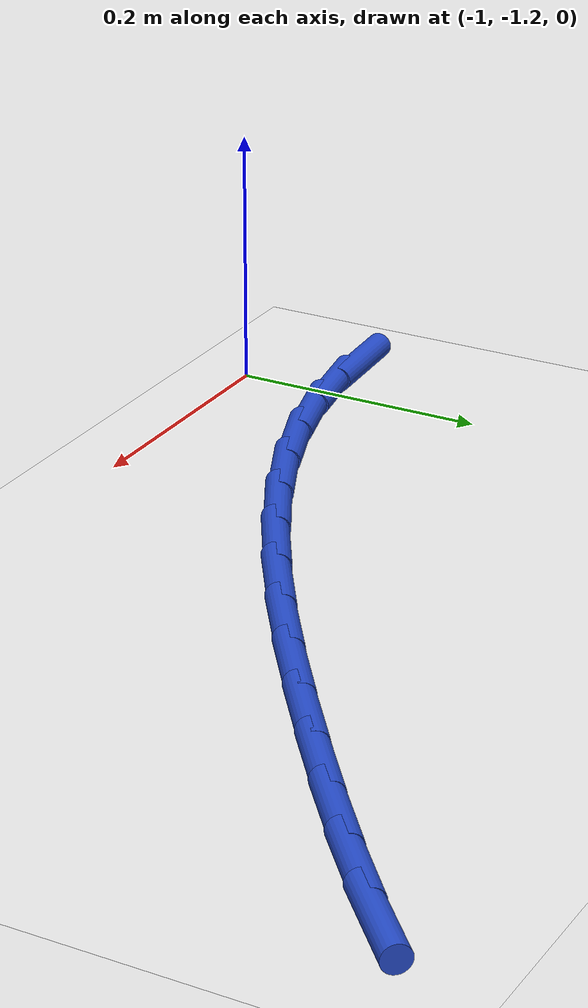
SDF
<sdf version="1.6">
 <world name="default">
  <model name="ground_plane">
   <static>1</static>
   <link name="link">
    <collision name="collision">
     <geometry><plane><normal>0 0 1</normal><size>100 100</size></plane></geometry>
     <surface><friction><ode><mu>100</mu><mu2>50</mu2></ode></friction></surface>
    </collision>
    <visual name="visual">
     <cast_shadows>0</cast_shadows>
     <geometry><plane><normal>0 0 1</normal><size>100 100</size></plane></geometry>
     <material>
      <script><uri>file://media/materials/scripts/gazebo.material</uri><name>Gazebo/WhiteGlow</name></script>
     </material>
    </visual>
   </link>
  </model>
  <model name="line">
   <link name="link_91">
    <pose>-1.0469936325225084 -1.1231341906443912 0.01 0 1.57 0.06224811746997233</pose>
    <collision name="collision">
     <geometry><cylinder><radius>0.01</radius><length>0.08</length></cylinder></geometry>
    </collision>
    <visual name="visual">
     <material>
      <script><name>Gazebo/Blue</name><uri>file://media/materials/scripts/gazebo.material</uri></script>
     </material>
     <geometry><cylinder><radius>0.01</radius><length>0.08</length></cylinder></geometry>
    </visual>
   </link>
   <link name="link_92">
    <pose>-0.9951335572850962 -1.1199018225531965 0.01 0 1.57 0.17961697876432461</pose>
    <collision name="collision">
     <geometry><cylinder><radius>0.01</radius><length>0.08</length></cylinder></geometry>
    </collision>
    <visual name="visual">
     <material>
      <script><name>Gazebo/Blue</name><uri>file://media/materials/scripts/gazebo.material</uri></script>
     </material>
     <geometry><cylinder><radius>0.01</radius><length>0.08</length></cylinder></geometry>
    </visual>
   </link>
   <link name="link_93">
    <pose>-0.9428073136195705 -1.1104007449084092 0.01 0 1.57 0.2796926994319292</pose>
    <collision name="collision">
     <geometry><cylinder><radius>0.01</radius><length>0.08</length></cylinder></geometry>
    </collision>
    <visual name="visual">
     <material>
      <script><name>Gazebo/Blue</name><uri>file://media/materials/scripts/gazebo.material</uri></script>
     </material>
     <geometry><cylinder><radius>0.01</radius><length>0.08</length></cylinder></geometry>
    </visual>
   </link>
   <link name="link_94">
    <pose>-0.8901958046801671 -1.0952895807834064 0.01 0 1.57 0.36365408144695316</pose>
    <collision name="collision">
     <geometry><cylinder><radius>0.01</radius><length>0.08</length></cylinder></geometry>
    </collision>
    <visual name="visual">
     <material>
      <script><name>Gazebo/Blue</name><uri>file://media/materials/scripts/gazebo.material</uri></script>
     </material>
     <geometry><cylinder><radius>0.01</radius><length>0.08</length></cylinder></geometry>
    </visual>
   </link>
   <link name="link_95">
    <pose>-0.8374799336211199 -1.0752269532515657 0.01 0 1.57 0.43335317559281644</pose>
    <collision name="collision">
     <geometry><cylinder><radius>0.01</radius><length>0.08</length></cylinder></geometry>
    </collision>
    <visual name="visual">
     <material>
      <script><name>Gazebo/Blue</name><uri>file://media/materials/scripts/gazebo.material</uri></script>
     </material>
     <geometry><cylinder><radius>0.01</radius><length>0.08</length></cylinder></geometry>
    </visual>
   </link>
   <link name="link_96">
    <pose>-0.7848406035966631 -1.0508714853862633 0.01 0 1.57 0.4907399671155326</pose>
    <collision name="collision">
     <geometry><cylinder><radius>0.01</radius><length>0.08</length></cylinder></geometry>
    </collision>
    <visual name="visual">
     <material>
      <script><name>Gazebo/Blue</name><uri>file://media/materials/scripts/gazebo.material</uri></script>
     </material>
     <geometry><cylinder><radius>0.01</radius><length>0.08</length></cylinder></geometry>
    </visual>
   </link>
   <link name="link_97">
    <pose>-0.7324587177610326 -1.0228818002608775 0.01 0 1.57 0.5375715772168441</pose>
    <collision name="collision">
     <geometry><cylinder><radius>0.01</radius><length>0.08</length></cylinder></geometry>
    </collision>
    <visual name="visual">
     <material>
      <script><name>Gazebo/Blue</name><uri>file://media/materials/scripts/gazebo.material</uri></script>
     </material>
     <geometry><cylinder><radius>0.01</radius><length>0.08</length></cylinder></geometry>
    </visual>
   </link>
   <link name="link_98">
    <pose>-0.6805151792684622 -0.9919165209487847 0.01 0 1.57 0.5752987518083643</pose>
    <collision name="collision">
     <geometry><cylinder><radius>0.01</radius><length>0.08</length></cylinder></geometry>
    </collision>
    <visual name="visual">
     <material>
      <script><name>Gazebo/Blue</name><uri>file://media/materials/scripts/gazebo.material</uri></script>
     </material>
     <geometry><cylinder><radius>0.01</radius><length>0.08</length></cylinder></geometry>
    </visual>
   </link>
   <link name="link_99">
    <pose>-0.6291908912731865 -0.9586342705233618 0.01 0 1.57 0.6050407621147039</pose>
    <collision name="collision">
     <geometry><cylinder><radius>0.01</radius><length>0.08</length></cylinder></geometry>
    </collision>
    <visual name="visual">
     <material>
      <script><name>Gazebo/Blue</name><uri>file://media/materials/scripts/gazebo.material</uri></script>
     </material>
     <geometry><cylinder><radius>0.01</radius><length>0.08</length></cylinder></geometry>
    </visual>
   </link>
   <link name="link_100">
    <pose>-0.5786667569294398 -0.923693672057986 0.01 0 1.57 0.6275938043129928</pose>
    <collision name="collision">
     <geometry><cylinder><radius>0.01</radius><length>0.08</length></cylinder></geometry>
    </collision>
    <visual name="visual">
     <material>
      <script><name>Gazebo/Blue</name><uri>file://media/materials/scripts/gazebo.material</uri></script>
     </material>
     <geometry><cylinder><radius>0.01</radius><length>0.08</length></cylinder></geometry>
    </visual>
   </link>
   <link name="link_101">
    <pose>-0.5291236793914577 -0.8877533486260348 0.01 0 1.57 0.643574660767554</pose>
    <collision name="collision">
     <geometry><cylinder><radius>0.01</radius><length>0.08</length></cylinder></geometry>
    </collision>
    <visual name="visual">
     <material>
      <script><name>Gazebo/Blue</name><uri>file://media/materials/scripts/gazebo.material</uri></script>
     </material>
     <geometry><cylinder><radius>0.01</radius><length>0.08</length></cylinder></geometry>
    </visual>
   </link>
   <link name="link_102">
    <pose>-0.48074262675198864 -0.8514619986491544 0.01 0 1.57 0.6583039721350805</pose>
    <collision name="collision">
     <geometry><cylinder><radius>0.01</radius><length>0.08</length></cylinder></geometry>
    </collision>
    <visual name="visual">
     <material>
      <script><name>Gazebo/Blue</name><uri>file://media/materials/scripts/gazebo.material</uri></script>
     </material>
     <geometry><cylinder><radius>0.01</radius><length>0.08</length></cylinder></geometry>
    </visual>
   </link>
   <link name="link_103">
    <pose>-0.4337070743663676 -0.8150851318025025 0.01 0 1.57 0.6786211933123205</pose>
    <collision name="collision">
     <geometry><cylinder><radius>0.01</radius><length>0.08</length></cylinder></geometry>
    </collision>
    <visual name="visual">
     <material>
      <script><name>Gazebo/Blue</name><uri>file://media/materials/scripts/gazebo.material</uri></script>
     </material>
     <geometry><cylinder><radius>0.01</radius><length>0.08</length></cylinder></geometry>
    </visual>
   </link>
   <link name="link_104">
    <pose>-0.38820374468429414 -0.7783919994009406 0.01 0 1.57 0.7052442923244541</pose>
    <collision name="collision">
     <geometry><cylinder><radius>0.01</radius><length>0.08</length></cylinder></geometry>
    </collision>
    <visual name="visual">
     <material>
      <script><name>Gazebo/Blue</name><uri>file://media/materials/scripts/gazebo.material</uri></script>
     </material>
     <geometry><cylinder><radius>0.01</radius><length>0.08</length></cylinder></geometry>
    </visual>
   </link>
   <link name="link_105">
    <pose>-0.3444195761684134 -0.7411188391732528 0.01 0 1.57 0.7384158532601833</pose>
    <collision name="collision">
     <geometry><cylinder><radius>0.01</radius><length>0.08</length></cylinder></geometry>
    </collision>
    <visual name="visual">
     <material>
      <script><name>Gazebo/Blue</name><uri>file://media/materials/scripts/gazebo.material</uri></script>
     </material>
     <geometry><cylinder><radius>0.01</radius><length>0.08</length></cylinder></geometry>
    </visual>
   </link>
  </model>
 </world>
</sdf>
